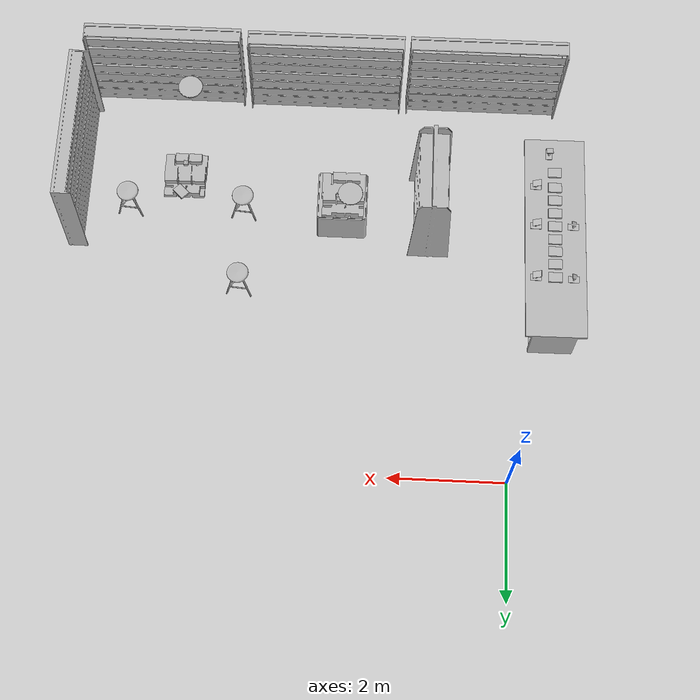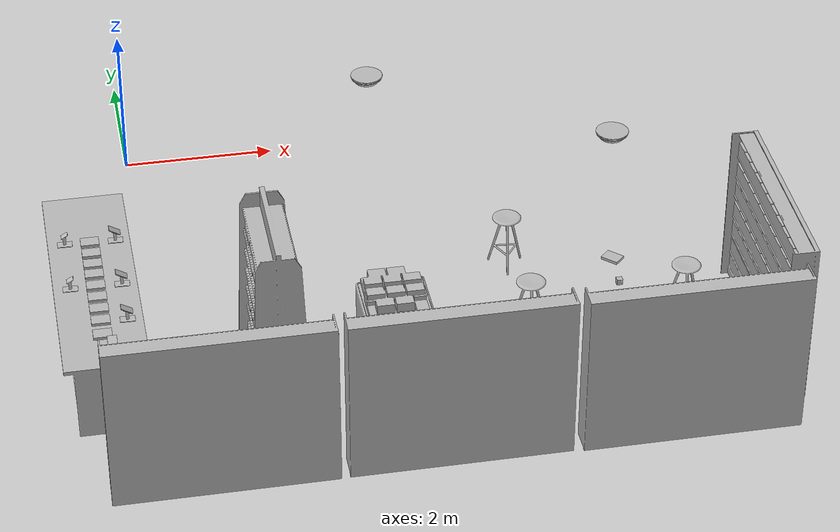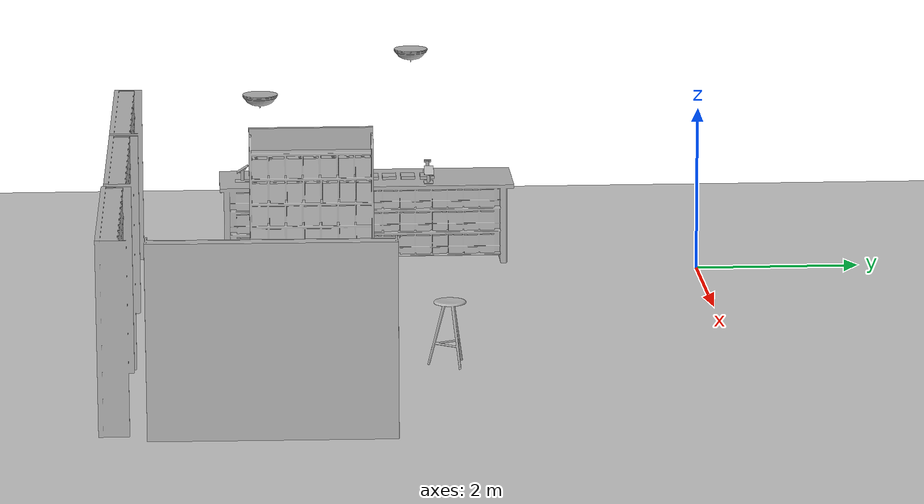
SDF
<sdf version="1.8">
 <world name="bookstore">
  <model name="ground_plane">
   <static>true</static>
   <link name="link">
    <collision name="collision">
     <geometry><plane><normal>0 0 1</normal><size>100 100</size></plane></geometry>
    </collision>
    <visual name="visual">
     <geometry><plane><normal>0 0 1</normal><size>100 100</size></plane></geometry>
     <material>
      <ambient>0.8 0.8 0.8 1</ambient>
      <diffuse>0.8 0.8 0.8 1</diffuse>
      <specular>0.8 0.8 0.8 1</specular>
     </material>
    </visual>
   </link>
  </model>
  <include>
   <name>BookE_01_004</name>
   <uri>file://aws_bookstore/models/aws_robomaker_retail_BookE_01</uri>
   <pose>5.677231 -4.649203 0.946394 0.000100 0.000006 -2.355752</pose>
   <static>true</static>
  </include>
  <include>
   <name>BookE_01_020</name>
   <uri>file://aws_bookstore/models/aws_robomaker_retail_BookE_01</uri>
   <pose>-0.694312 -3.530823 1.053825 0.000004 -0.000004 -1.573382</pose>
   <static>true</static>
  </include>
  <include>
   <name>BookE_01_021</name>
   <uri>file://aws_bookstore/models/aws_robomaker_retail_BookE_01</uri>
   <pose>-0.694312 -3.760511 1.053825 0.000004 -0.000004 -1.573382</pose>
   <static>true</static>
  </include>
  <include>
   <name>BookE_01_022</name>
   <uri>file://aws_bookstore/models/aws_robomaker_retail_BookE_01</uri>
   <pose>-0.694312 -3.980472 1.053825 0.000004 -0.000004 -1.573382</pose>
   <static>true</static>
  </include>
  <include>
   <name>BookE_01_023</name>
   <uri>file://aws_bookstore/models/aws_robomaker_retail_BookE_01</uri>
   <pose>-0.694312 -4.221891 1.053825 0.000004 -0.000004 -1.573382</pose>
   <static>true</static>
  </include>
  <include>
   <name>BookE_01_024</name>
   <uri>file://aws_bookstore/models/aws_robomaker_retail_BookE_01</uri>
   <pose>-0.694312 -4.461891 1.053825 0.000004 -0.000004 -1.573382</pose>
   <static>true</static>
  </include>
  <include>
   <name>BookE_01_025</name>
   <uri>file://aws_bookstore/models/aws_robomaker_retail_BookE_01</uri>
   <pose>-0.694312 -4.701891 1.053825 0.000004 -0.000004 -1.573382</pose>
   <static>true</static>
  </include>
  <include>
   <name>BookE_01_026</name>
   <uri>file://aws_bookstore/models/aws_robomaker_retail_BookE_01</uri>
   <pose>-0.694312 -4.941891 1.053825 0.000004 -0.000004 -1.573382</pose>
   <static>true</static>
  </include>
  <include>
   <name>BookE_01_027</name>
   <uri>file://aws_bookstore/models/aws_robomaker_retail_BookE_01</uri>
   <pose>-0.694312 -5.221891 1.053825 0.000004 -0.000004 -1.573382</pose>
   <static>true</static>
  </include>
  <include>
   <name>BookE_01_028</name>
   <uri>file://aws_bookstore/models/aws_robomaker_retail_BookE_01</uri>
   <pose>-0.694312 -3.291891 1.053825 0.000004 -0.000004 -1.573382</pose>
   <static>true</static>
  </include>
  <include>
   <name>BookD_01_001</name>
   <uri>file://aws_bookstore/models/aws_robomaker_retail_BookD_01</uri>
   <pose>5.720048 -5.365876 0.022179 0.003452 -0.000001 0.000652</pose>
   <static>true</static>
  </include>
  <include>
   <name>BookF_01_002</name>
   <uri>file://aws_bookstore/models/aws_robomaker_retail_BookF_01</uri>
   <pose>2.902979 -4.760748 0.75826 0.003450 0.000006 -0.002250</pose>
   <static>true</static>
  </include>
  <include>
   <name>BookshelfA_01_002</name>
   <uri>file://aws_bookstore/models/aws_robomaker_retail_BookshelfA_01</uri>
   <pose>1.405153 -4.761649 0.003411 0 0 0</pose>
   <static>true</static>
  </include>
  <include>
   <name>BookshelfB_01_003</name>
   <uri>file://aws_bookstore/models/aws_robomaker_retail_BookshelfB_01</uri>
   <pose>0.522246 -6.971500 0.017947 -0.003292 0.000000 0.000000</pose>
   <static>true</static>
  </include>
  <include>
   <name>BookshelfB_01_004</name>
   <uri>file://aws_bookstore/models/aws_robomaker_retail_BookshelfB_01</uri>
   <pose>3.293386 -6.963665 0.017383 0.000008 -0.000002 0.000000</pose>
   <static>true</static>
  </include>
  <include>
   <name>BookshelfB_01_005</name>
   <uri>file://aws_bookstore/models/aws_robomaker_retail_BookshelfB_01</uri>
   <pose>6.080380 -6.987659 0.017409 0.000174 0.000004 0.000000</pose>
   <static>true</static>
  </include>
  <include>
   <name>BookshelfB_01_006</name>
   <uri>file://aws_bookstore/models/aws_robomaker_retail_BookshelfB_01</uri>
   <pose>7.478331 -5.298296 0.017443 -0.001974 -0.000211 1.554057</pose>
   <static>true</static>
  </include>
  <include>
   <name>BookshelfC_01_002</name>
   <uri>file://aws_bookstore/models/aws_robomaker_retail_BookshelfC_01</uri>
   <pose>2.915449 -4.761712 -0.003455 0.003452 0 0.000014</pose>
   <static>true</static>
  </include>
  <include>
   <name>ChairB_01_004</name>
   <uri>file://aws_bookstore/models/aws_robomaker_retail_ChairB_01</uri>
   <pose>6.6439554 -4.681600 0.0220513 0 0.006174 0.000088</pose>
   <static>true</static>
  </include>
  <include>
   <name>ChairB_01_007</name>
   <uri>file://aws_bookstore/models/aws_robomaker_retail_ChairB_01</uri>
   <pose>4.653303 -3.246633 0.0220513 0 0.006174 0.000088</pose>
   <static>true</static>
  </include>
  <include>
   <name>ChairB_01_008</name>
   <uri>file://aws_bookstore/models/aws_robomaker_retail_ChairB_01</uri>
   <pose>4.653303 -4.681600 0.0220513 0 0.006174 0.000088</pose>
   <static>true</static>
  </include>
  <include>
   <name>DeskA_01_004</name>
   <uri>file://aws_bookstore/models/aws_robomaker_retail_DeskA_01</uri>
   <pose>-0.701688 -4.049294 0.014866 0.000000 -0.000000 -1.566097</pose>
   <static>true</static>
  </include>
  <include>
   <name>TabletB_01_003</name>
   <uri>file://aws_bookstore/models/aws_robomaker_retail_TabletB_01</uri>
   <pose>-0.598457 -5.570730 1.184718 0.550862 -0.007302 0.000000</pose>
   <static>true</static>
  </include>
  <include>
   <name>TabletB_01_005</name>
   <uri>file://aws_bookstore/models/aws_robomaker_retail_TabletB_01</uri>
   <pose>-0.378561 -4.954985 1.184718 0.518383 0.023342 1.564514</pose>
   <static>true</static>
  </include>
  <include>
   <name>TabletB_01_006</name>
   <uri>file://aws_bookstore/models/aws_robomaker_retail_TabletB_01</uri>
   <pose>-0.378561 -4.227170 1.184718 0.518383 0.023342 1.564514</pose>
   <static>true</static>
  </include>
  <include>
   <name>TabletB_01_007</name>
   <uri>file://aws_bookstore/models/aws_robomaker_retail_TabletB_01</uri>
   <pose>-0.378561 -3.280550 1.184718 0.518383 0.023342 1.564514</pose>
   <static>true</static>
  </include>
  <include>
   <name>Holder_01_001</name>
   <uri>file://aws_bookstore/models/aws_robomaker_retail_Holder_01</uri>
   <pose>-0.599181 -5.571190 1.037756 0 -0 0</pose>
   <static>true</static>
  </include>
  <include>
   <name>Holder_01_013</name>
   <uri>file://aws_bookstore/models/aws_robomaker_retail_Holder_01</uri>
   <pose>-0.372529 -4.960362 1.037756 0 -0 1.550000</pose>
   <static>true</static>
  </include>
  <include>
   <name>Holder_01_014</name>
   <uri>file://aws_bookstore/models/aws_robomaker_retail_Holder_01</uri>
   <pose>-0.372529 -4.226824 1.037756 0 -0 1.550000</pose>
   <static>true</static>
  </include>
  <include>
   <name>Holder_01_015</name>
   <uri>file://aws_bookstore/models/aws_robomaker_retail_Holder_01</uri>
   <pose>-0.372529 -3.286318 1.037756 0 -0 1.550000</pose>
   <static>true</static>
  </include>
  <include>
   <name>Holder_01_017</name>
   <uri>file://aws_bookstore/models/aws_robomaker_retail_Holder_01</uri>
   <pose>-1.001700 -4.226100 1.037756 0 0 -1.588645</pose>
   <static>true</static>
  </include>
  <include>
   <name>Holder_01_018</name>
   <uri>file://aws_bookstore/models/aws_robomaker_retail_Holder_01</uri>
   <pose>-1.001700 -3.269130 1.037756 0 0 -1.588645</pose>
   <static>true</static>
  </include>
  <include>
   <name>LightA_01_001</name>
   <uri>file://aws_bookstore/models/aws_robomaker_retail_LightA_01</uri>
   <pose>2.774418 -3.628150 3.150329 0 -0 0</pose>
   <static>true</static>
  </include>
  <include>
   <name>LightA_01_002</name>
   <uri>file://aws_bookstore/models/aws_robomaker_retail_LightA_01</uri>
   <pose>5.383991 -5.383710 3.150328 0 -0 0</pose>
   <static>true</static>
  </include>
  <include>
   <name>MagicCube_01_001</name>
   <uri>file://aws_bookstore/models/aws_robomaker_retail_MagicCube_01</uri>
   <pose>5.667560 -5.174908 0.968597 1.559939 -0.000001 -1.555409</pose>
   <static>true</static>
  </include>
 </world>
</sdf>
